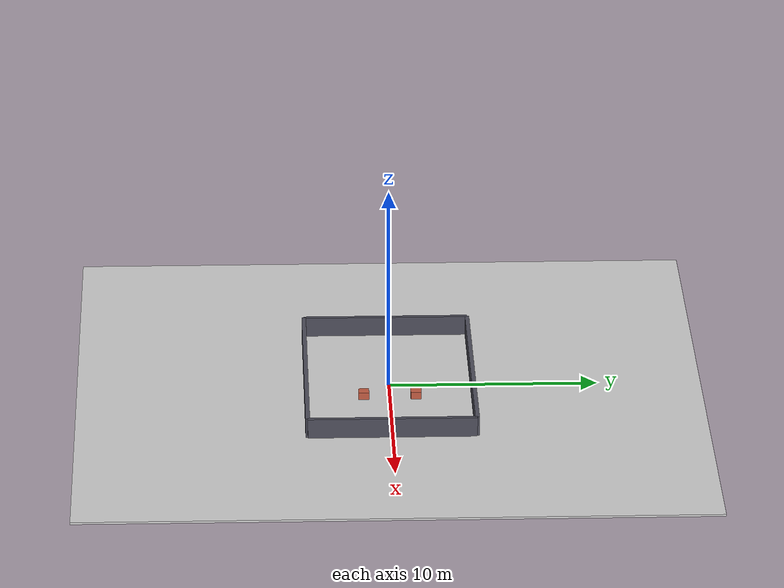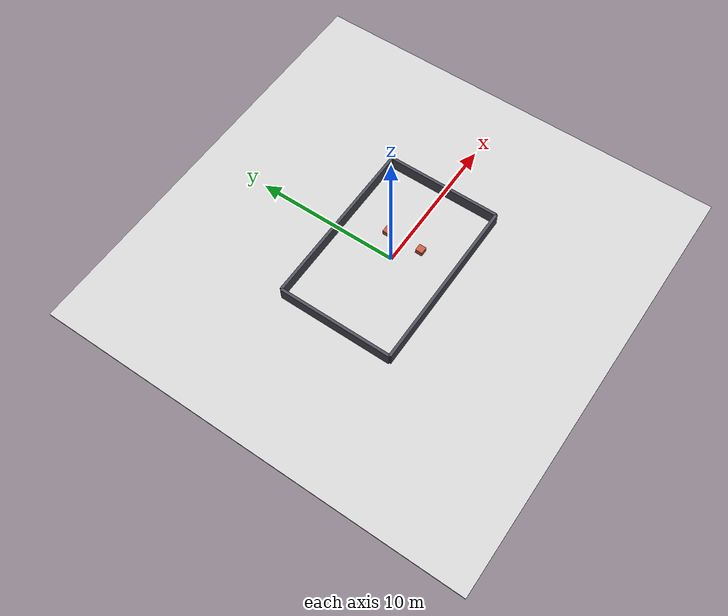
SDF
<?xml version='1.0'?>
<sdf version='1.9'>
  <world name='wheeltec_world'>
    <physics name='default_physics' type='ode'>
      <max_step_size>0.001</max_step_size>
      <real_time_factor>1.0</real_time_factor>
      <real_time_update_rate>1000</real_time_update_rate>
    </physics>

    <plugin filename='gz-sim-physics-system' name='gz::sim::systems::Physics'/>
    <plugin filename='gz-sim-user-commands-system' name='gz::sim::systems::UserCommands'/>
    <plugin filename='gz-sim-sensors-system' name='gz::sim::systems::Sensors'/>
    <plugin filename='gz-sim-scene-broadcaster-system' name='gz::sim::systems::SceneBroadcaster'/>

    <light name='sun' type='directional'>
      <pose>0 0 10 0 0 0</pose>
      <cast_shadows>true</cast_shadows>
      <diffuse>0.9 0.9 0.9 1</diffuse>
      <specular>0.2 0.2 0.2 1</specular>
      <direction>-0.5 0.1 -1</direction>
    </light>

    <model name='ground_plane'>
      <static>true</static>
      <link name='ground_link'>
        <collision name='ground_collision'>
          <geometry>
            <box><size>30 30 0.1</size></box>
          </geometry>
          <surface>
            <friction>
              <ode>
                <mu>1.0</mu>
                <mu2>1.0</mu2>
              </ode>
            </friction>
          </surface>
        </collision>
        <visual name='ground_visual'>
          <geometry>
            <box><size>30 30 0.1</size></box>
          </geometry>
          <material>
            <ambient>0.8 0.8 0.8 1</ambient>
            <diffuse>0.8 0.8 0.8 1</diffuse>
          </material>
        </visual>
      </link>
    </model>

    <model name='wall_left'>
      <static>true</static>
      <pose>0 4 0.5 0 0 0</pose>
      <link name='link'>
        <collision name='collision'>
          <geometry><box><size>12 0.2 1.0</size></box></geometry>
        </collision>
        <visual name='visual'>
          <geometry><box><size>12 0.2 1.0</size></box></geometry>
          <material><ambient>0.3 0.3 0.35 1</ambient></material>
        </visual>
      </link>
    </model>

    <model name='wall_right'>
      <static>true</static>
      <pose>0 -4 0.5 0 0 0</pose>
      <link name='link'>
        <collision name='collision'>
          <geometry><box><size>12 0.2 1.0</size></box></geometry>
        </collision>
        <visual name='visual'>
          <geometry><box><size>12 0.2 1.0</size></box></geometry>
          <material><ambient>0.3 0.3 0.35 1</ambient></material>
        </visual>
      </link>
    </model>

    <model name='wall_front'>
      <static>true</static>
      <pose>6 0 0.5 0 0 0</pose>
      <link name='link'>
        <collision name='collision'>
          <geometry><box><size>0.2 8 1.0</size></box></geometry>
        </collision>
        <visual name='visual'>
          <geometry><box><size>0.2 8 1.0</size></box></geometry>
          <material><ambient>0.3 0.3 0.35 1</ambient></material>
        </visual>
      </link>
    </model>

    <model name='wall_back'>
      <static>true</static>
      <pose>-6 0 0.5 0 0 0</pose>
      <link name='link'>
        <collision name='collision'>
          <geometry><box><size>0.2 8 1.0</size></box></geometry>
        </collision>
        <visual name='visual'>
          <geometry><box><size>0.2 8 1.0</size></box></geometry>
          <material><ambient>0.3 0.3 0.35 1</ambient></material>
        </visual>
      </link>
    </model>

    <model name='parking_block_1'>
      <static>true</static>
      <pose>1.5 1.25 0.2 0 0 0</pose>
      <link name='link'>
        <collision name='collision'>
          <geometry><box><size>0.5 0.5 0.4</size></box></geometry>
        </collision>
        <visual name='visual'>
          <geometry><box><size>0.5 0.5 0.4</size></box></geometry>
          <material><ambient>0.75 0.35 0.25 1</ambient></material>
        </visual>
      </link>
    </model>

    <model name='parking_block_2'>
      <static>true</static>
      <pose>1.5 -1.25 0.2 0 0 0</pose>
      <link name='link'>
        <collision name='collision'>
          <geometry><box><size>0.5 0.5 0.4</size></box></geometry>
        </collision>
        <visual name='visual'>
          <geometry><box><size>0.5 0.5 0.4</size></box></geometry>
          <material><ambient>0.75 0.35 0.25 1</ambient></material>
        </visual>
      </link>
    </model>
  </world>
</sdf>
